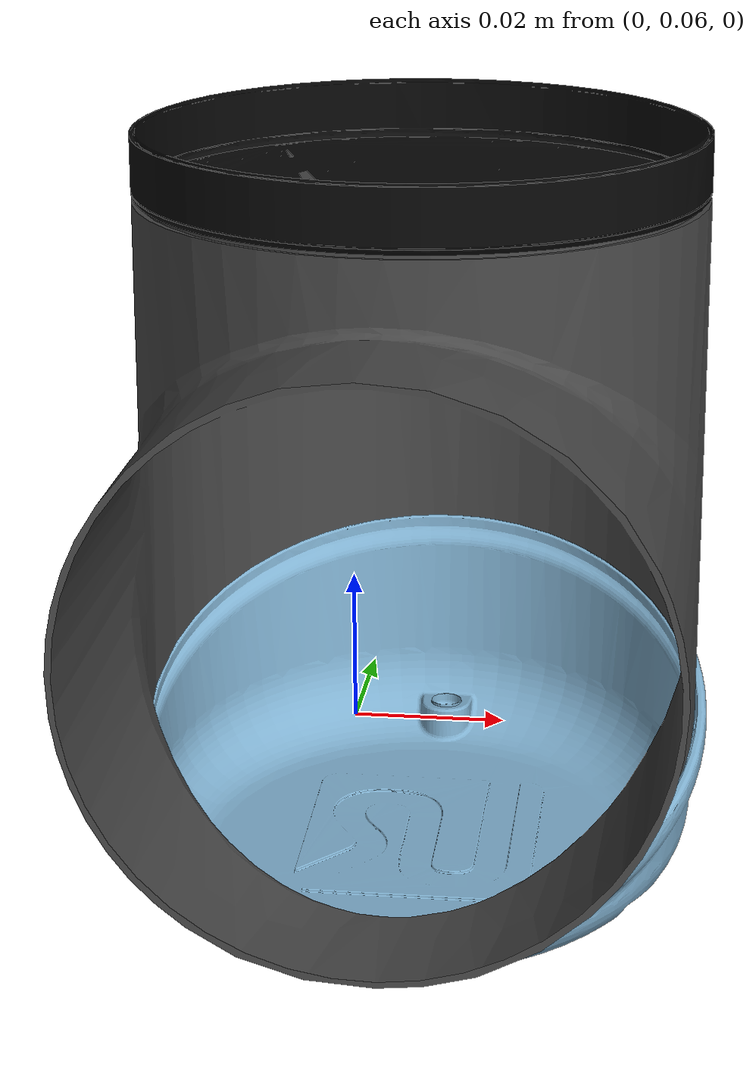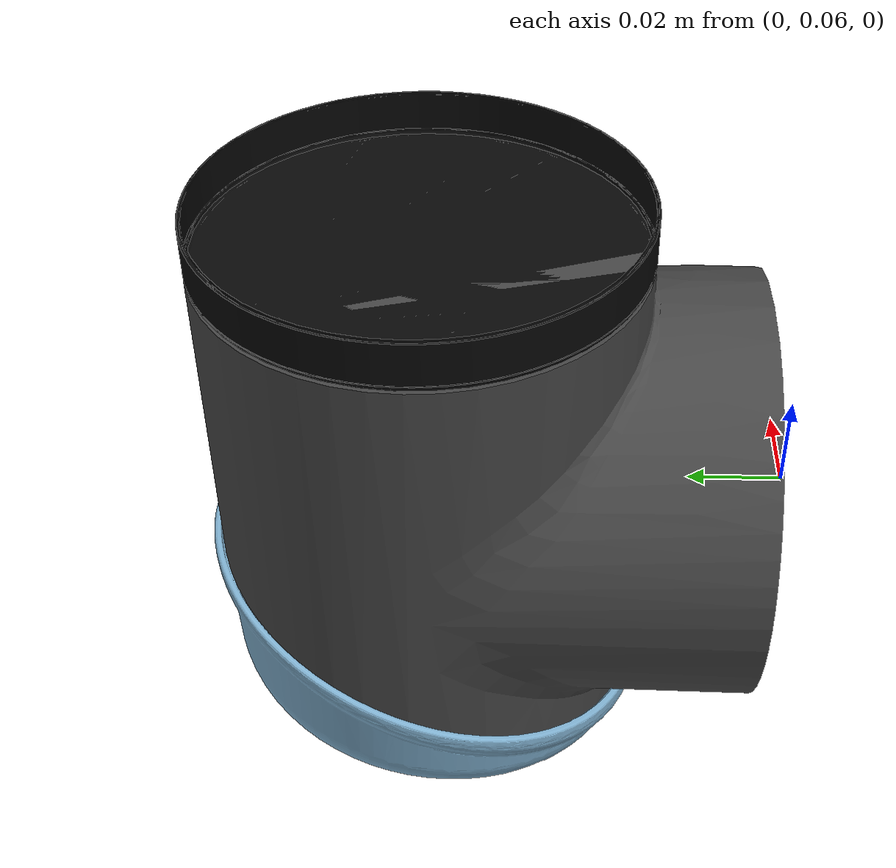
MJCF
<mujoco model="wrist1">
  <default>
    <default class="visual">
      <geom group="2" type="mesh" contype="0" conaffinity="0"/>
    </default>
    <default class="collision">
      <geom group="3" type="mesh"/>
    </default>
  </default>
  <asset>
    <material name="material_wrist1_0" specular="0.20000000000000004" shininess="1.0" rgba="0.27843137 0.27843137 0.27843137 1.0"/>
    <material name="material_wrist1_1" specular="0.20000000000000004" shininess="1.0" rgba="0.49019608 0.67843137 0.80000000 1.0"/>
    <material name="material_wrist1_2" specular="0.20000000000000004" shininess="1.0" rgba="0.03137255 0.03137255 0.03137255 1.0"/>
    <mesh file="wrist1_0.obj"/>
    <mesh file="wrist1_1.obj"/>
    <mesh file="wrist1_2.obj"/>
  </asset>
  <worldbody>
    <body name="wrist1">
      <geom mesh="wrist1_0" material="material_wrist1_2" class="visual"/>
      <geom mesh="wrist1_1" material="material_wrist1_1" class="visual"/>
      <geom mesh="wrist1_2" material="material_wrist1_0" class="visual"/>
      <geom mesh="wrist1_0" class="collision"/>
      <geom mesh="wrist1_1" class="collision"/>
      <geom mesh="wrist1_2" class="collision"/>
    </body>
  </worldbody>
</mujoco>
